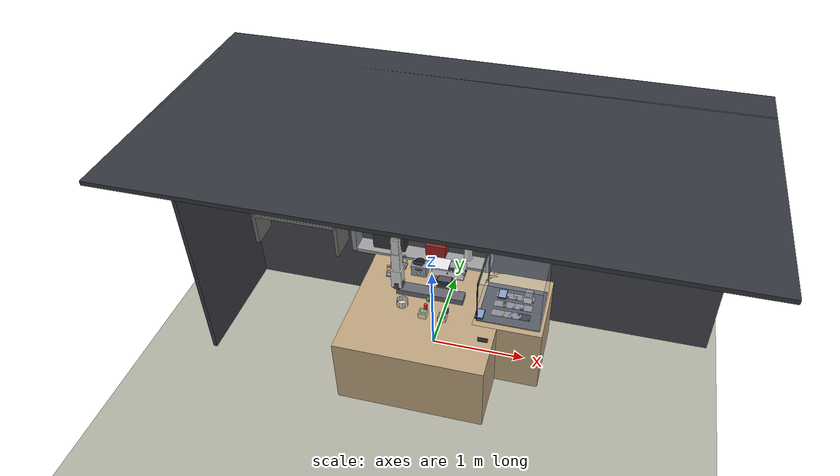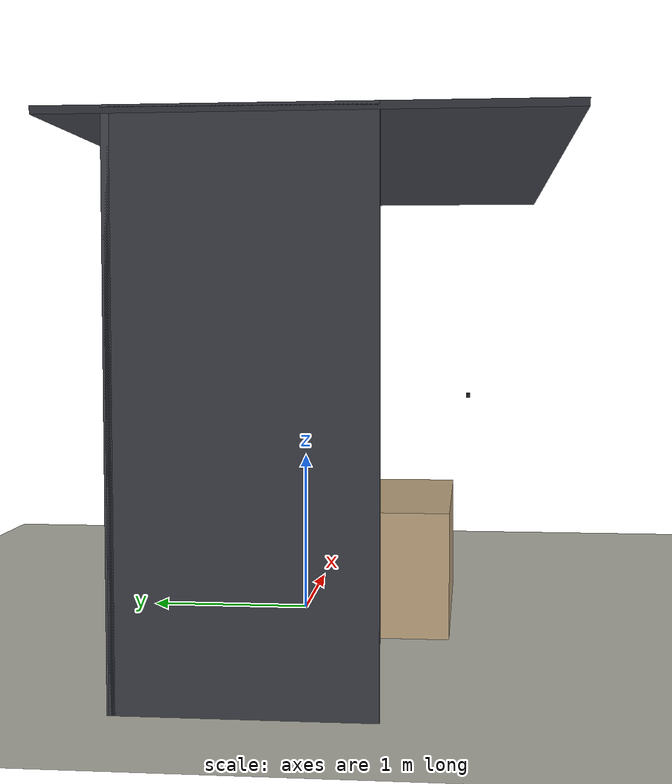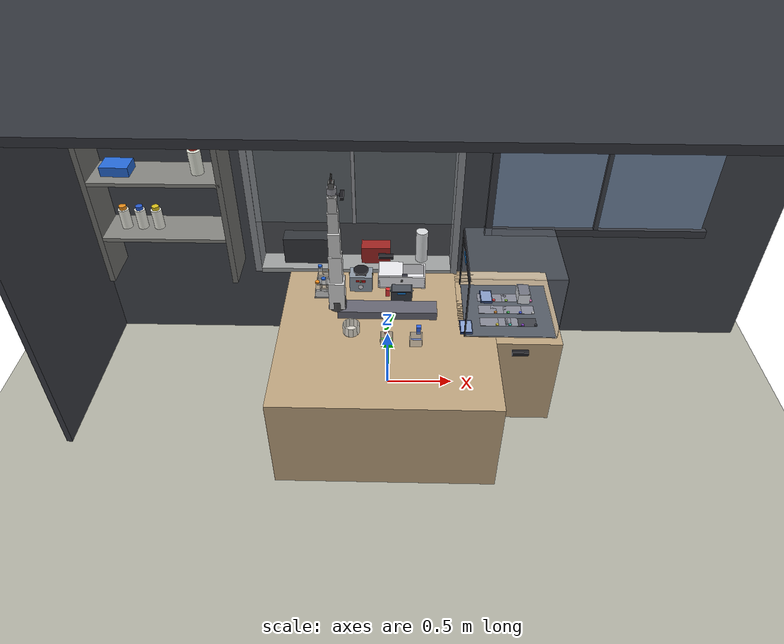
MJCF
<mujoco model="xarm6_rail_cubes_bins">

  <compiler angle="radian" meshdir="assets/"/>
  <option gravity="0 0 -9.81" timestep="0.002" integrator="implicitfast"/>

  <!-- Center the viewer on the working area (bench top, slightly forward of
       the rail) and pull the camera back enough to frame the whole arm. -->
  <statistic center="0 0.15 0.95" extent="1.8"/>

  <visual>
    <headlight ambient="0.4 0.4 0.4" diffuse="0.6 0.6 0.6"/>
    <rgba haze="0.15 0.25 0.35 1"/>
    <map zfar="30"/>
    <!-- azimuth=135 looks at the scene from the front-right; elevation=-25
         tilts the view ~25 deg down so the bench/cubes/bins are clearly visible. -->
    <global azimuth="135" elevation="-25" offwidth="1280" offheight="720"/>
  </visual>

  <default>
    <default class="arm_link">
      <geom contype="2" conaffinity="1"/>
    </default>
    <default class="cube">
      <geom type="box" size="0.015 0.015 0.015" mass="0.05"
            friction="1.0 0.05 0.0001" solref="0.005 1" solimp="0.95 0.99 0.001"/>
    </default>
    <default class="cup_wall">
      <geom type="box" mass="0" contype="1" conaffinity="1"/>
    </default>
    <default class="bin_wall">
      <geom type="box" rgba="0.8 0.8 0.8 0.5" mass="0"
            contype="1" conaffinity="1"/>
    </default>
    <default class="tube_body">
      <geom type="cylinder" size="0.015 0.0575" mass="0.05"
            friction="1.0 0.05 0.0001" solref="0.005 1" solimp="0.95 0.99 0.001"/>
    </default>
    <default class="rack_wall">
      <geom type="box" rgba="0.85 0.85 0.85 0.7" mass="0"
            contype="1" conaffinity="1"/>
    </default>
    <default class="rack_base">
      <geom type="box" rgba="0.6 0.6 0.6 1" mass="0"
            contype="1" conaffinity="1"/>
    </default>
    <default class="well_plate_body">
      <geom type="box" size="0.0425 0.0635 0.007" mass="0.10"
            friction="1.0 0.05 0.0001"
            solref="0.005 1" solimp="0.95 0.99 0.001"/>
    </default>
    <default class="ot2_wall">
      <geom type="box" rgba="0.85 0.92 1.0 0.18" mass="0"
            contype="1" conaffinity="1"/>
    </default>
    <!-- Opentrons-style tip rack (96-position SBS tip box). Slightly
         taller than a plate (tips contribute the bulk of the height). -->
    <default class="tip_box_body">
      <geom type="box" size="0.0425 0.0635 0.040" mass="0.20"
            friction="1.0 0.05 0.0001"
            solref="0.005 1" solimp="0.95 0.99 0.001"/>
    </default>
    <default class="heater_shaker_body">
      <geom type="box" size="0.076 0.045 0.041" mass="2.0"
            friction="2.0 0.1 0.01"
            solref="0.005 1" solimp="0.95 0.99 0.001"/>
    </default>
    <default class="vortex_platform_geom">
      <geom type="cylinder" size="0.055 0.005" mass="0"
            friction="3.0 1.0 0.005"
            solref="0.005 1" solimp="0.95 0.99 0.001"/>
    </default>
  </default>

  <asset>
    <material name="red_mat"   rgba="0.9 0.2 0.2 1"/>
    <material name="green_mat" rgba="0.2 0.8 0.3 1"/>
    <material name="blue_mat"  rgba="0.2 0.4 0.9 1"/>
    <material name="translucent_cup_mat" rgba="0.93 0.93 0.91 0.85"/>
    <material name="red_bin_mat"   rgba="0.9 0.2 0.2 0.6"/>
    <material name="green_bin_mat" rgba="0.2 0.8 0.3 0.6"/>
    <material name="blue_bin_mat"  rgba="0.2 0.4 0.9 0.6"/>
    <!-- Falcon tube materials -->
    <material name="tube_body_mat"  rgba="0.95 0.95 0.95 0.5"/>
    <material name="cap_orange_mat" rgba="0.95 0.55 0.10 1"/>
    <material name="cap_blue_mat"   rgba="0.15 0.40 0.85 1"/>
    <!-- OT-2 instrument materials -->
    <material name="ot2_chassis_mat" rgba="0.95 0.95 0.95 1"/>
    <material name="ot2_deck_mat"    rgba="0.30 0.32 0.36 1"/>
    <material name="ot2_slot_mat"    rgba="0.55 0.55 0.60 1"/>
    <material name="ot2_frame_mat"   rgba="0.20 0.20 0.22 1"/>
    <material name="ot2_logo_mat"    rgba="0.10 0.50 0.85 1"/>
    <!-- 96-well plate material (dark blue, typical biology plate) -->
    <material name="well_plate_mat"  rgba="0.10 0.20 0.45 1"/>
    <material name="well_plate_top_mat" rgba="0.55 0.65 0.85 1"/>
    <!-- Tip box (Opentrons tip rack is typically white/grey) -->
    <material name="tip_box_mat"     rgba="0.92 0.92 0.94 1"/>
    <material name="tip_box_top_mat" rgba="0.45 0.45 0.50 1"/>
    <!-- Heater-shaker (Opentrons module is mostly dark grey with a blue accent) -->
    <material name="heater_shaker_mat"     rgba="0.20 0.22 0.26 1"/>
    <material name="heater_shaker_top_mat" rgba="0.30 0.32 0.36 1"/>
    <material name="heater_shaker_accent_mat" rgba="0.10 0.50 0.85 1"/>
    <!-- Vortex-Genie 2: classic look is grey chassis, black neck,
         dark rubber/foam top platform. -->
    <material name="vortex_chassis_mat"  rgba="0.55 0.60 0.65 1"/>
    <material name="vortex_neck_mat"     rgba="0.15 0.15 0.17 1"/>
    <material name="vortex_platform_mat" rgba="0.10 0.10 0.12 1"/>
    <material name="vortex_dial_mat"     rgba="0.85 0.85 0.88 1"/>
    <material name="vortex_logo_mat"     rgba="0.80 0.10 0.10 1"/>
    <material name="slot_1_mat"  rgba="0.95 0.20 0.20 1"/>   <!-- red -->
    <material name="slot_2_mat"  rgba="0.95 0.55 0.10 1"/>   <!-- orange -->
    <material name="slot_3_mat"  rgba="0.95 0.85 0.20 1"/>   <!-- yellow -->
    <material name="slot_4_mat"  rgba="0.60 0.85 0.20 1"/>   <!-- yellow-green -->
    <material name="slot_5_mat"  rgba="0.20 0.80 0.30 1"/>   <!-- green -->
    <material name="slot_6_mat"  rgba="0.20 0.80 0.70 1"/>   <!-- teal -->
    <material name="slot_7_mat"  rgba="0.20 0.65 0.95 1"/>   <!-- cyan -->
    <material name="slot_8_mat"  rgba="0.20 0.30 0.95 1"/>   <!-- blue -->
    <material name="slot_9_mat"  rgba="0.55 0.20 0.85 1"/>   <!-- purple -->
    <material name="slot_10_mat" rgba="0.95 0.45 0.75 1"/>   <!-- pink -->
    <material name="slot_11_mat" rgba="0.95 0.95 0.95 1"/>   <!-- white -->
    <material name="slot_trash_mat" rgba="0.15 0.15 0.18 1"/> <!-- dark grey -->
    <material name="led_pcb_mat" rgba="0.12 0.12 0.13 1"/>
    <material name="led_off_mat" rgba="0.05 0.05 0.05 1"/>
    <!-- Opentrons Thermocycler Module materials. Off-white chassis with
         dark anodised heated-block + tiny blue display. -->
    <material name="pcr_chassis_mat" rgba="0.92 0.92 0.94 1"/>
    <material name="pcr_lid_mat"     rgba="0.92 0.92 0.94 1"/>
    <material name="pcr_block_mat"   rgba="0.18 0.18 0.22 1"/>
    <material name="pcr_display_mat" rgba="0.10 0.30 0.55 1"/>
    <material name="pcr_logo_mat"    rgba="0.10 0.50 0.85 1"/>
    <material name="bio_gripper_body_mat"   rgba="0.20 0.20 0.22 0"/>
    <material name="bio_gripper_pad_mat"    rgba="0.30 0.30 0.32 0"/>
    <material name="bio_gripper_rubber_mat" rgba="0.95 0.55 0.30 0"/>
  </asset>

  <worldbody>

    <light pos="0 0 2.5" dir="0 0 -1" diffuse="0.7 0.7 0.7"/>
    <light pos="0.5 0.5 1.8" dir="-0.3 -0.3 -1" diffuse="0.4 0.4 0.4"/>

    <body name="vr_head" mocap="true" pos="0 -0.6 1.4">
      <camera name="cam_left"  pos="-0.0315 0 0" quat="0.7071 0.7071 0 0" fovy="90"/>
      <camera name="cam_right" pos=" 0.0315 0 0" quat="0.7071 0.7071 0 0" fovy="90"/>
    </body>

    <geom name="floor" type="plane" size="3 3 0.1"
          rgba="0.7 0.7 0.65 1" contype="1" conaffinity="1"/>

    <body name="lab_environment" pos="0 0 0">

      <!-- Back wall and ceiling. -->
      <geom group="2" name="wall_back" type="box" size="2.60 0.02 1.45"
            pos="0.30 0.640 1.45" rgba="0.26 0.27 0.30 1"
            contype="0" conaffinity="0" mass="0"/>
      <geom group="2" name="wall_north" type="box" size="0.02 0.65 1.45"
            pos="-2.28 0.00 1.45" rgba="0.23 0.24 0.27 1"
            contype="0" conaffinity="0" mass="0"/>
      <geom group="2" name="ceiling" type="box" size="2.60 1.30 0.02"
            pos="0.30 -0.30 2.88" rgba="0.20 0.21 0.24 1"
            contype="0" conaffinity="0" mass="0"/>

      <!-- ---------------- Fume hood, directly behind the arm ----------------
           Working aperture roughly x in [-0.95, +0.45], sash closed to about
           mid-height, upper cabinet above it. -->
      <geom group="2" name="hood_interior" type="box" size="0.72 0.01 0.80"
            pos="-0.25 0.620 1.55" rgba="0.30 0.31 0.33 1"
            contype="0" conaffinity="0" mass="0"/>
      <geom group="2" name="hood_deck" type="box" size="0.72 0.10 0.02"
            pos="-0.25 0.520 0.760" rgba="0.62 0.63 0.63 1"
            contype="0" conaffinity="0" mass="0"/>
      <geom group="2" name="hood_post_north" type="box" size="0.025 0.10 0.83"
            pos="-0.995 0.520 1.58" rgba="0.55 0.56 0.58 1"
            contype="0" conaffinity="0" mass="0"/>
      <geom group="2" name="hood_post_south" type="box" size="0.025 0.10 0.83"
            pos="0.495 0.520 1.58" rgba="0.55 0.56 0.58 1"
            contype="0" conaffinity="0" mass="0"/>
      <geom group="2" name="hood_lintel" type="box" size="0.77 0.10 0.06"
            pos="-0.25 0.520 2.47" rgba="0.24 0.25 0.28 1"
            contype="0" conaffinity="0" mass="0"/>
      <!-- Sash glass. Alpha low enough to read the clutter behind it. -->
      <geom group="2" name="hood_sash" type="box" size="0.72 0.006 0.42"
            pos="-0.25 0.430 1.62" rgba="0.70 0.78 0.80 0.22"
            contype="0" conaffinity="0" mass="0"/>
      <geom group="2" name="hood_sash_rail" type="box" size="0.72 0.012 0.014"
            pos="-0.25 0.425 2.05" rgba="0.60 0.61 0.63 1"
            contype="0" conaffinity="0" mass="0"/>
      <geom group="2" name="hood_mullion" type="box" size="0.012 0.010 0.42"
            pos="-0.25 0.428 1.62" rgba="0.58 0.59 0.61 1"
            contype="0" conaffinity="0" mass="0"/>
      <!-- Foil-wrapped trays on the hood's upper shelf, as in the photo. -->
      <geom group="2" name="hood_upper_shelf" type="box" size="0.72 0.09 0.012"
            pos="-0.25 0.520 2.14" rgba="0.50 0.51 0.53 1"
            contype="0" conaffinity="0" mass="0"/>
      <geom group="2" name="hood_foil_a" type="box" size="0.26 0.07 0.055"
            pos="-0.52 0.520 2.20" rgba="0.80 0.81 0.83 1"
            contype="0" conaffinity="0" mass="0"/>
      <geom group="2" name="hood_foil_b" type="box" size="0.20 0.07 0.045"
            pos="0.05 0.520 2.19" rgba="0.76 0.77 0.79 1"
            contype="0" conaffinity="0" mass="0"/>
      <!-- Instruments visible inside the hood, kept blocky on purpose. -->
      <geom group="2" name="hood_kit_dark" type="box" size="0.18 0.07 0.11"
            pos="-0.62 0.560 0.890" rgba="0.20 0.21 0.23 1"
            contype="0" conaffinity="0" mass="0"/>
      <geom group="2" name="hood_kit_red" type="box" size="0.11 0.06 0.07"
            pos="-0.10 0.560 0.850" rgba="0.62 0.14 0.13 1"
            contype="0" conaffinity="0" mass="0"/>
      <geom group="2" name="hood_scope" type="cylinder" size="0.045 0.13"
            pos="0.25 0.560 0.910" rgba="0.85 0.86 0.87 1"
            contype="0" conaffinity="0" mass="0"/>

      <!-- ---------------- Reagent shelving, north end ---------------- -->
      <geom group="2" name="shelf_upright_a" type="box" size="0.02 0.16 0.90"
            pos="-1.16 0.470 1.62" rgba="0.44 0.44 0.43 1"
            contype="0" conaffinity="0" mass="0"/>
      <geom group="2" name="shelf_upright_b" type="box" size="0.02 0.16 0.90"
            pos="-2.10 0.470 1.62" rgba="0.44 0.44 0.43 1"
            contype="0" conaffinity="0" mass="0"/>
      <geom group="2" name="shelf_board_1" type="box" size="0.47 0.16 0.014"
            pos="-1.63 0.470 1.10" rgba="0.52 0.52 0.50 1"
            contype="0" conaffinity="0" mass="0"/>
      <geom group="2" name="shelf_board_2" type="box" size="0.47 0.16 0.014"
            pos="-1.63 0.470 1.56" rgba="0.52 0.52 0.50 1"
            contype="0" conaffinity="0" mass="0"/>
      <geom group="2" name="shelf_board_3" type="box" size="0.47 0.16 0.014"
            pos="-1.63 0.470 2.02" rgba="0.52 0.52 0.50 1"
            contype="0" conaffinity="0" mass="0"/>
      <!-- Reagent bottles: body + coloured cap, the lab's usual palette. -->
      <geom group="2" name="bottle_a" type="cylinder" size="0.038 0.075"
            pos="-1.94 0.470 1.19" rgba="0.92 0.92 0.88 1"
            contype="0" conaffinity="0" mass="0"/>
      <geom group="2" name="bottle_a_cap" type="cylinder" size="0.026 0.014"
            pos="-1.94 0.470 1.28" rgba="0.90 0.55 0.10 1"
            contype="0" conaffinity="0" mass="0"/>
      <geom group="2" name="bottle_b" type="cylinder" size="0.038 0.075"
            pos="-1.82 0.470 1.19" rgba="0.92 0.92 0.88 1"
            contype="0" conaffinity="0" mass="0"/>
      <geom group="2" name="bottle_b_cap" type="cylinder" size="0.026 0.014"
            pos="-1.82 0.470 1.28" rgba="0.15 0.35 0.80 1"
            contype="0" conaffinity="0" mass="0"/>
      <geom group="2" name="bottle_c" type="cylinder" size="0.038 0.075"
            pos="-1.70 0.470 1.19" rgba="0.92 0.92 0.88 1"
            contype="0" conaffinity="0" mass="0"/>
      <geom group="2" name="bottle_c_cap" type="cylinder" size="0.026 0.014"
            pos="-1.70 0.470 1.28" rgba="0.85 0.75 0.10 1"
            contype="0" conaffinity="0" mass="0"/>
      <geom group="2" name="bottle_d" type="cylinder" size="0.045 0.090"
            pos="-1.34 0.470 1.66" rgba="0.90 0.91 0.86 1"
            contype="0" conaffinity="0" mass="0"/>
      <geom group="2" name="bottle_d_cap" type="cylinder" size="0.030 0.014"
            pos="-1.34 0.470 1.77" rgba="0.80 0.20 0.15 1"
            contype="0" conaffinity="0" mass="0"/>
      <!-- Blue tube racks, the most recognisable thing on those shelves. -->
      <geom group="2" name="wall_rack_1" type="box" size="0.10 0.075 0.035"
            pos="-1.90 0.470 1.61" rgba="0.15 0.42 0.85 1"
            contype="0" conaffinity="0" mass="0"/>
      <geom group="2" name="wall_rack_2" type="box" size="0.10 0.075 0.035"
            pos="-1.66 0.470 2.07" rgba="0.15 0.42 0.85 1"
            contype="0" conaffinity="0" mass="0"/>
      <geom group="2" name="shelf_box" type="box" size="0.13 0.10 0.075"
            pos="-1.32 0.470 2.11" rgba="0.72 0.60 0.42 1"
            contype="0" conaffinity="0" mass="0"/>

      <geom group="2" name="window_glass" type="box" size="0.80 0.008 0.62"
            pos="1.55 0.615 1.68" rgba="0.46 0.55 0.66 1"
            contype="0" conaffinity="0" mass="0"/>
      <geom group="2" name="window_frame_top" type="box" size="0.83 0.025 0.030"
            pos="1.55 0.600 2.33" rgba="0.22 0.23 0.26 1"
            contype="0" conaffinity="0" mass="0"/>
      <geom group="2" name="window_frame_bottom" type="box" size="0.83 0.025 0.030"
            pos="1.55 0.600 1.03" rgba="0.22 0.23 0.26 1"
            contype="0" conaffinity="0" mass="0"/>
      <geom group="2" name="window_frame_north" type="box" size="0.025 0.025 0.68"
            pos="0.75 0.600 1.68" rgba="0.22 0.23 0.26 1"
            contype="0" conaffinity="0" mass="0"/>
      <geom group="2" name="window_mullion" type="box" size="0.016 0.020 0.62"
            pos="1.55 0.598 1.68" rgba="0.24 0.25 0.28 1"
            contype="0" conaffinity="0" mass="0"/>
    </body>

    <body name="bench" pos="0 0 0.375">
      <!-- Main section: x in [-0.75, 0.75] (1.50 m), y in [-0.947, 0.45]
           (1.397 m = 139.7 cm). -->
      <geom name="bench_top" type="box" size="0.75 0.6985 0.375"
            pos="0 -0.2485 0"
            rgba="0.75 0.65 0.5 1" contype="1" conaffinity="1" mass="0"/>
      <!-- OT-2 extension (the L arm): x in [0.50, 1.20], y in [-0.35, 0.45]. -->
      <geom name="bench_ot2_ext" type="box" size="0.35 0.40 0.375"
            pos="0.85 0.05 0"
            rgba="0.75 0.65 0.5 1" contype="1" conaffinity="1" mass="0"/>
    </body>

    <body name="observers" pos="0 0 0">
      <!-- cam_overhead: primary: object positions, and did-it-land verification
           15 deg off vertical -> 26% of depth error lands in X-Y -->
      <geom name="cam_overhead_housing" type="box"
            size="0.0450 0.0125 0.0125"
            pos="0.0000 -0.4500 1.5500"
            rgba="0.12 0.12 0.14 1" mass="0"
            contype="0" conaffinity="0"/>
      <camera name="cam_overhead"
              pos="0.000000 -0.450000 1.550000"
              xyaxes="1.000000 0.000000 -0.000000 0.000000 0.966235 0.257663"
              resolution="1280 720"
              sensorsize="0.003840000 0.002160000"
              focalpixel="915.244873 916.319824"
              principalpixel="20.033508 -2.447205"/>
      <!-- cam_tripod: complement: object height, into-the-cup views, occlusion backup
           63 deg off vertical -> 89% of depth error lands in X-Y -->
      <geom name="cam_tripod_housing" type="box"
            size="0.0450 0.0125 0.0125"
            pos="0.7500 -1.0500 1.3500"
            rgba="0.12 0.12 0.14 1" mass="0"
            contype="0" conaffinity="0"/>
      <camera name="cam_tripod"
              pos="0.750000 -1.050000 1.350000"
              xyaxes="0.729537 0.683941 -0.000000 -0.306629 0.327071 0.893870"
              resolution="1280 720"
              sensorsize="0.003840000 0.002160000"
              focalpixel="915.244873 916.319824"
              principalpixel="20.033508 -2.447205"/>
    </body>

    <body name="rail_track" pos="0.0 -0.05 0.807">
      <geom name="rail_geom" type="box" size="0.35 0.065 0.031" pos="0 0 -0.026"
            rgba="0.4 0.4 0.45 1" contype="0" conaffinity="0" mass="0"/>

      <body name="rail_carriage" pos="-0.35 0.0 0.02">
        <joint name="rail" type="slide" axis="1 0 0"
               range="0.0 0.7" damping="200"/>
        <geom name="carriage_geom" type="box" size="0.06 0.04 0.015"
              rgba="0.55 0.55 0.6 1" contype="1" conaffinity="1" mass="2.0"/>

        <body name="xarm_base" pos="0 0 0.02">
          <geom name="base_link" type="cylinder" size="0.06 0.04"
                rgba="0.3 0.3 0.3 1" mass="0.5" class="arm_link"/>
          <joint name="joint1" type="hinge" axis="0 0 1"
                 range="-6.28319 6.28319" damping="10"/>

          <body name="link1" pos="0 0 0.09">
            <geom name="link1_geom" type="box" size="0.055 0.055 0.11"
                  rgba="0.85 0.85 0.85 1" mass="2.16" class="arm_link"/>
            <joint name="joint2" type="hinge" axis="0 1 0"
                   range="-2.05896 2.0944" damping="10"/>

            <body name="link2" pos="0 0 0.22">
              <geom name="link2_geom" type="box" size="0.045 0.045 0.105"
                    rgba="0.85 0.85 0.85 1" mass="1.71" class="arm_link"/>
              <joint name="joint3" type="hinge" axis="0 1 0"
                     range="-3.92699 0.19199" damping="8"/>

              <body name="link3" pos="0 0 0.20">
                <geom name="link3_geom" type="box" size="0.04 0.04 0.09"
                      rgba="0.8 0.8 0.8 1" mass="1.38" class="arm_link"/>
                <joint name="joint4" type="hinge" axis="1 0 0"
                       range="-6.28319 6.28319" damping="6"/>

                <body name="link4" pos="0 0 0.175">
                  <geom name="link4_geom" type="box" size="0.035 0.035 0.075"
                        rgba="0.75 0.75 0.75 1" mass="1.05" class="arm_link"/>
                  <joint name="joint5" type="hinge" axis="0 1 0"
                         range="-1.69297 3.14159" damping="4"/>

                  <body name="link5" pos="0 0 0.13">
                    <geom name="link5_geom" type="box" size="0.03 0.03 0.055"
                          rgba="0.7 0.7 0.7 1" mass="0.72" class="arm_link"/>
                    <joint name="joint6" type="hinge" axis="1 0 0"
                           range="-6.28319 6.28319" damping="3"/>

                    <body name="link6" pos="0 0 0.075">
                      <geom name="link6_geom" type="cylinder" size="0.025 0.03"
                            rgba="0.6 0.6 0.6 1" mass="0.25" class="arm_link"/>
                      <!-- IK target marker. Kept small + translucent so it's an
                           unobtrusive cue rather than dominating the visual. -->
                      <site name="end_effector" pos="0 0 0.09"
                            size="0.005" rgba="1 0.3 0.3 0.5" type="sphere"/>
                      <body name="gripper" pos="0 0 0.06">
                        <geom name="tool_coupling" type="cylinder"
                              size="0.031 0.0225" pos="0 0 -0.0375"
                              rgba="0.55 0.55 0.58 1" mass="0"
                              contype="0" conaffinity="0"/>
                        <!-- Palm: the static wrist plate. Geom name preserved
                             for FK validator (ARM_GEOM_NAMES) + weld targets. -->
                        <geom name="gripper_geom" type="box"
                              size="0.018 0.025 0.020"
                              pos="0 0 0.005"
                              rgba="0.35 0.35 0.35 1" mass="0.15"
                              class="arm_link"/>
                        <body name="finger_left" pos="0 -0.025 0.045">
                          <joint name="finger_left_joint" type="slide"
                                 axis="0 1 0" range="0 0.015" damping="2"/>
                          <geom name="finger_left_geom" type="box"
                                size="0.005 0.004 0.020"
                                rgba="0.2 0.2 0.2 1" mass="0.02"
                                contype="0" conaffinity="0"/>
                        </body>
                        <body name="finger_right" pos="0 0.025 0.045">
                          <joint name="finger_right_joint" type="slide"
                                 axis="0 -1 0" range="0 0.015" damping="2"/>
                          <geom name="finger_right_geom" type="box"
                                size="0.005 0.004 0.020"
                                rgba="0.2 0.2 0.2 1" mass="0.02"
                                contype="0" conaffinity="0"/>
                        </body>
                        <geom name="bio_gripper_body" type="box"
                              size="0.045 0.030 0.010"
                              pos="0 0 0.010"
                              material="bio_gripper_body_mat" mass="0"
                              contype="0" conaffinity="0"/>
                        <geom name="bio_gripper_pad_left" type="box"
                              size="0.005 0.030 0.020"
                              pos="-0.040 0 0.045"
                              material="bio_gripper_pad_mat" mass="0"
                              contype="0" conaffinity="0"/>
                        <geom name="bio_gripper_pad_right" type="box"
                              size="0.005 0.030 0.020"
                              pos="+0.040 0 0.045"
                              material="bio_gripper_pad_mat" mass="0"
                              contype="0" conaffinity="0"/>
                        <geom name="bio_gripper_rubber_left" type="box"
                              size="0.001 0.028 0.018"
                              pos="-0.034 0 0.045"
                              material="bio_gripper_rubber_mat" mass="0"
                              contype="0" conaffinity="0"/>
                        <geom name="bio_gripper_rubber_right" type="box"
                              size="0.001 0.028 0.018"
                              pos="+0.034 0 0.045"
                              material="bio_gripper_rubber_mat" mass="0"
                              contype="0" conaffinity="0"/>
                        <body name="wrist_camera"
                              pos="0.067052239 -0.031138757 -0.038388544"
                              quat="-0.001556928 0.700327003 0.713806469 0.004470910">
                          <geom name="d435i_housing" type="box"
                                size="0.0450 0.0125 0.0125"
                                pos="0 0 0.0135"
                                rgba="0.10 0.10 0.12 1" mass="0.072"
                                contype="0" conaffinity="0"/>
                          <geom name="d435i_bracket" type="box"
                                size="0.03696 0.006 0.004"
                                pos="0.016206 -0.033223 0.017498"
                                quat="0.848058 0.000015 0.000024 -0.529903"
                                rgba="0.30 0.30 0.33 1" mass="0"
                                contype="0" conaffinity="0"/>
                          <camera name="cam_wrist_color"
                                  pos="0.000000000 0.000000000 0.000000000"
                                  quat="1.000000000 0.000000000 0.000000000 0.000000000"
                                  resolution="640 480"
                                  sensorsize="0.001920000 0.001440000"
                                  focalpixel="610.163269 610.879883"
                                  principalpixel="13.189026 -1.798126"/>
                          <camera name="cam_wrist_depth"
                                  pos="-0.014915820 0.000356515 0.000118665"
                                  quat="0.999959400 0.000508270 0.003389387 0.008333837"
                                  resolution="640 480"
                                  sensorsize="0.001920000 0.001440000"
                                  focalpixel="383.829987 383.829987"
                                  principalpixel="-1.451294 0.914062"/>
                        </body>
                      </body>
                    </body>
                  </body>
                </body>
              </body>
            </body>
          </body>
        </body>

      </body>
    </body>

    <!-- Cubes -->
    <body name="red_cube_back" pos="0.00 0.15 0.78">
      <geom name="red_cube_back_geom" class="cube" material="red_mat"
            size="0.015 0.015 0.030" mass="0.10"/>
      <joint type="free" name="red_cube_back_joint"/>
    </body>
    <body name="red_cube_front" pos="0.00 -0.25 0.78">
      <geom name="red_cube_front_geom" class="cube" material="red_mat"
            size="0.015 0.015 0.030" mass="0.10"/>
      <joint type="free" name="red_cube_front_joint"/>
    </body>
    <body name="green_cube" pos="0.00 -0.15 0.78">
      <geom name="green_cube_geom" class="cube" material="green_mat"/>
      <joint type="free" name="green_cube_joint"/>
    </body>
    <body name="blue_cube" pos="0.22 -0.25 0.78">
      <geom name="blue_cube_geom" class="cube" material="blue_mat"
            size="0.015 0.015 0.030" mass="0.10"/>
      <joint type="free" name="blue_cube_joint"/>
    </body>

    <!-- Bins -->

    <body name="green_bin" pos="0.00 -0.35 0.75">
      <inertial pos="0 0 0.020" mass="0.5" diaginertia="6e-4 6e-4 9e-4"/>
      <joint type="free" name="green_bin_joint"/>
      <geom name="green_bin_floor" type="box" size="0.040 0.040 0.001"
            pos="0 0 0.001" material="green_bin_mat"
            contype="1" conaffinity="1" mass="0"/>
      <geom name="green_bin_w_front" class="bin_wall"
            size="0.040 0.002 0.030" pos="0 -0.040 0.030"/>
      <geom name="green_bin_w_back"  class="bin_wall"
            size="0.040 0.002 0.030" pos="0  0.040 0.030"/>
      <geom name="green_bin_w_left"  class="bin_wall"
            size="0.002 0.040 0.030" pos="-0.040 0 0.030"/>
      <geom name="green_bin_w_right" class="bin_wall"
            size="0.002 0.040 0.030" pos=" 0.040 0 0.030"/>
    </body>

    <body name="translucent_cup" pos="-0.245 -0.25 0.75">
      <inertial pos="0 0 0.020" mass="0.15" diaginertia="1.4e-4 1.4e-4 1.0e-4"/>
      <joint type="free" name="translucent_cup_joint"/>
      <geom name="translucent_cup_floor" type="cylinder" size="0.0575 0.001"
            pos="0 0 0.001" material="translucent_cup_mat"
            contype="1" conaffinity="1" mass="0"/>
      <geom name="translucent_cup_w00" class="cup_wall" material="translucent_cup_mat"
            size="0.015 0.002 0.034" pos="0.05550 0.00000 0.036" euler="0 0 1.57080"/>
      <geom name="translucent_cup_w01" class="cup_wall" material="translucent_cup_mat"
            size="0.015 0.002 0.034" pos="0.04806 0.02775 0.036" euler="0 0 2.09440"/>
      <geom name="translucent_cup_w02" class="cup_wall" material="translucent_cup_mat"
            size="0.015 0.002 0.034" pos="0.02775 0.04806 0.036" euler="0 0 2.61799"/>
      <geom name="translucent_cup_w03" class="cup_wall" material="translucent_cup_mat"
            size="0.015 0.002 0.034" pos="0.00000 0.05550 0.036" euler="0 0 3.14159"/>
      <geom name="translucent_cup_w04" class="cup_wall" material="translucent_cup_mat"
            size="0.015 0.002 0.034" pos="-0.02775 0.04806 0.036" euler="0 0 3.66519"/>
      <geom name="translucent_cup_w05" class="cup_wall" material="translucent_cup_mat"
            size="0.015 0.002 0.034" pos="-0.04806 0.02775 0.036" euler="0 0 4.18879"/>
      <geom name="translucent_cup_w06" class="cup_wall" material="translucent_cup_mat"
            size="0.015 0.002 0.034" pos="-0.05550 0.00000 0.036" euler="0 0 4.71239"/>
      <geom name="translucent_cup_w07" class="cup_wall" material="translucent_cup_mat"
            size="0.015 0.002 0.034" pos="-0.04806 -0.02775 0.036" euler="0 0 5.23599"/>
      <geom name="translucent_cup_w08" class="cup_wall" material="translucent_cup_mat"
            size="0.015 0.002 0.034" pos="-0.02775 -0.04806 0.036" euler="0 0 5.75959"/>
      <geom name="translucent_cup_w09" class="cup_wall" material="translucent_cup_mat"
            size="0.015 0.002 0.034" pos="-0.00000 -0.05550 0.036" euler="0 0 6.28319"/>
      <geom name="translucent_cup_w10" class="cup_wall" material="translucent_cup_mat"
            size="0.015 0.002 0.034" pos="0.02775 -0.04806 0.036" euler="0 0 6.80678"/>
      <geom name="translucent_cup_w11" class="cup_wall" material="translucent_cup_mat"
            size="0.015 0.002 0.034" pos="0.04806 -0.02775 0.036" euler="0 0 7.33038"/>
    </body>
    <body name="blue_bin" pos="0.20 -0.35 0.75">
      <inertial pos="0 0 0.020" mass="0.5" diaginertia="6e-4 6e-4 9e-4"/>
      <joint type="free" name="blue_bin_joint"/>
      <geom name="blue_bin_floor" type="box" size="0.040 0.040 0.001"
            pos="0 0 0.001" material="blue_bin_mat"
            contype="1" conaffinity="1" mass="0"/>
      <geom name="blue_bin_w_front" class="bin_wall"
            size="0.040 0.002 0.030" pos="0 -0.040 0.030"/>
      <geom name="blue_bin_w_back"  class="bin_wall"
            size="0.040 0.002 0.030" pos="0  0.040 0.030"/>
      <geom name="blue_bin_w_left"  class="bin_wall"
            size="0.002 0.040 0.030" pos="-0.040 0 0.030"/>
      <geom name="blue_bin_w_right" class="bin_wall"
            size="0.002 0.040 0.030" pos=" 0.040 0 0.030"/>
    </body>

    <!-- LEFT RACK at x=-0.45, y=0.15. Holds L1, L2, L3 scattered across slots.
         Free body so it can be pushed (mass ~250g). -->
    <body name="left_tube_rack" pos="-0.45 0.15 0.755">
      <inertial pos="0 0 0.020" mass="0.25" diaginertia="3e-4 7e-4 8e-4"/>
      <joint type="free" name="left_tube_rack_joint"/>
      <geom name="left_rack_base" class="rack_base" size="0.085 0.045 0.005"
            pos="0 0 0"/>
      <!-- Outer perimeter -->
      <geom name="L_outer_front" class="rack_wall" size="0.080 0.001 0.025" pos=" 0.000 -0.040 0.030"/>
      <geom name="L_outer_back"  class="rack_wall" size="0.080 0.001 0.025" pos=" 0.000  0.040 0.030"/>
      <geom name="L_outer_left"  class="rack_wall" size="0.001 0.040 0.025" pos="-0.080  0.000 0.030"/>
      <geom name="L_outer_right" class="rack_wall" size="0.001 0.040 0.025" pos=" 0.080  0.000 0.030"/>
      <!-- Internal vertical separators (3, between the 4 columns) -->
      <geom name="L_sep_v1" class="rack_wall" size="0.001 0.040 0.025" pos="-0.040 0 0.030"/>
      <geom name="L_sep_v2" class="rack_wall" size="0.001 0.040 0.025" pos=" 0.000 0 0.030"/>
      <geom name="L_sep_v3" class="rack_wall" size="0.001 0.040 0.025" pos=" 0.040 0 0.030"/>
      <!-- Internal horizontal separator (1, between the 2 rows) -->
      <geom name="L_sep_h1" class="rack_wall" size="0.080 0.001 0.025" pos="0 0 0.030"/>
    </body>

    <!-- RIGHT RACK at x=+0.45, y=0.15. Holds R1, R2, R3.
         Free body (same as left). -->
    <body name="right_tube_rack" pos="-0.45 0.30 0.755">
      <inertial pos="0 0 0.020" mass="0.25" diaginertia="3e-4 7e-4 8e-4"/>
      <joint type="free" name="right_tube_rack_joint"/>
      <geom name="right_rack_base" class="rack_base" size="0.085 0.045 0.005"
            pos="0 0 0"/>
      <geom name="R_outer_front" class="rack_wall" size="0.080 0.001 0.025" pos=" 0.000 -0.040 0.030"/>
      <geom name="R_outer_back"  class="rack_wall" size="0.080 0.001 0.025" pos=" 0.000  0.040 0.030"/>
      <geom name="R_outer_left"  class="rack_wall" size="0.001 0.040 0.025" pos="-0.080  0.000 0.030"/>
      <geom name="R_outer_right" class="rack_wall" size="0.001 0.040 0.025" pos=" 0.080  0.000 0.030"/>
      <geom name="R_sep_v1" class="rack_wall" size="0.001 0.040 0.025" pos="-0.040 0 0.030"/>
      <geom name="R_sep_v2" class="rack_wall" size="0.001 0.040 0.025" pos=" 0.000 0 0.030"/>
      <geom name="R_sep_v3" class="rack_wall" size="0.001 0.040 0.025" pos=" 0.040 0 0.030"/>
      <geom name="R_sep_h1" class="rack_wall" size="0.080 0.001 0.025" pos="0 0 0.030"/>
    </body>

    <!-- LEFT RACK TUBES -->
    <body name="tube_L1" pos="-0.510 0.130 0.8175">  <!-- col1 row1, orange -->
      <inertial pos="0 0 0.01" mass="0.03" diaginertia="3e-5 3e-5 5e-6"/>
      <geom name="tube_L1_body" class="tube_body" material="tube_body_mat" mass="0"/>
      <geom name="tube_L1_cap"  type="cylinder" size="0.0155 0.006"
            pos="0 0 0.0635" material="cap_orange_mat" mass="0"/>
      <joint type="free" name="tube_L1_joint"/>
    </body>
    <body name="tube_L2" pos="-0.470 0.170 0.8175">  <!-- col2 row2, blue -->
      <inertial pos="0 0 0.01" mass="0.03" diaginertia="3e-5 3e-5 5e-6"/>
      <geom name="tube_L2_body" class="tube_body" material="tube_body_mat" mass="0"/>
      <geom name="tube_L2_cap"  type="cylinder" size="0.0155 0.006"
            pos="0 0 0.0635" material="cap_blue_mat" mass="0"/>
      <joint type="free" name="tube_L2_joint"/>
    </body>
    <body name="tube_L3" pos="-0.390 0.130 0.8175">  <!-- col4 row1, orange -->
      <inertial pos="0 0 0.01" mass="0.03" diaginertia="3e-5 3e-5 5e-6"/>
      <geom name="tube_L3_body" class="tube_body" material="tube_body_mat" mass="0"/>
      <geom name="tube_L3_cap"  type="cylinder" size="0.0155 0.006"
            pos="0 0 0.0635" material="cap_orange_mat" mass="0"/>
      <joint type="free" name="tube_L3_joint"/>
    </body>
    <!-- RIGHT RACK TUBES -->
    <body name="tube_R1" pos="-0.510 0.320 0.8175">  <!-- col1 row2, blue (moved with right_tube_rack to back-left) -->
      <inertial pos="0 0 0.01" mass="0.03" diaginertia="3e-5 3e-5 5e-6"/>
      <geom name="tube_R1_body" class="tube_body" material="tube_body_mat" mass="0"/>
      <geom name="tube_R1_cap"  type="cylinder" size="0.0155 0.006"
            pos="0 0 0.0635" material="cap_blue_mat" mass="0"/>
      <joint type="free" name="tube_R1_joint"/>
    </body>
    <body name="tube_R2" pos="-0.430 0.280 0.8175">  <!-- col3 row1, orange (moved with right_tube_rack to back-left) -->
      <inertial pos="0 0 0.01" mass="0.03" diaginertia="3e-5 3e-5 5e-6"/>
      <geom name="tube_R2_body" class="tube_body" material="tube_body_mat" mass="0"/>
      <geom name="tube_R2_cap"  type="cylinder" size="0.0155 0.006"
            pos="0 0 0.0635" material="cap_orange_mat" mass="0"/>
      <joint type="free" name="tube_R2_joint"/>
    </body>
    <body name="tube_R3" pos="-0.390 0.320 0.8175">  <!-- col4 row2, blue (moved with right_tube_rack to back-left) -->
      <inertial pos="0 0 0.01" mass="0.03" diaginertia="3e-5 3e-5 5e-6"/>
      <geom name="tube_R3_body" class="tube_body" material="tube_body_mat" mass="0"/>
      <geom name="tube_R3_cap"  type="cylinder" size="0.0155 0.006"
            pos="0 0 0.0635" material="cap_blue_mat" mass="0"/>
      <joint type="free" name="tube_R3_joint"/>
    </body>

    <body name="opentrons_ot2" pos="0.85 0.0 0.0">
      <geom name="ot2_chassis" type="box" size="0.315 0.285 0.375"
            pos="0 0 0.375" material="ot2_chassis_mat"
            contype="1" conaffinity="1" mass="0"/>
      <!-- Deck plate: dark grey, 5mm thick, sits on the chassis top.
           Slightly inset (5mm) from chassis edge for a clean look. -->
      <geom name="ot2_deck" type="box" size="0.310 0.280 0.0025"
            pos="0 0 0.7525" material="ot2_deck_mat"
            contype="1" conaffinity="1" mass="0"/>

      <!-- Slot outlines (grey rectangles indicating SBS footprints). -->
      <geom name="ot2_slot_1_outline"  type="box" size="0.064 0.043 0.0010"
            pos="-0.133 +0.132 0.755" material="ot2_slot_mat"
            contype="0" conaffinity="0" mass="0"/>
      <geom name="ot2_slot_2_outline"  type="box" size="0.064 0.043 0.0010"
            pos="-0.133  0.000 0.755" material="ot2_slot_mat"
            contype="0" conaffinity="0" mass="0"/>
      <geom name="ot2_slot_3_outline"  type="box" size="0.064 0.043 0.0010"
            pos="-0.133 -0.132 0.755" material="ot2_slot_mat"
            contype="0" conaffinity="0" mass="0"/>
      <geom name="ot2_slot_4_outline"  type="box" size="0.064 0.043 0.0010"
            pos="-0.044 +0.132 0.755" material="ot2_slot_mat"
            contype="0" conaffinity="0" mass="0"/>
      <geom name="ot2_slot_5_outline"  type="box" size="0.064 0.043 0.0010"
            pos="-0.044  0.000 0.755" material="ot2_slot_mat"
            contype="0" conaffinity="0" mass="0"/>
      <geom name="ot2_slot_6_outline"  type="box" size="0.064 0.043 0.0010"
            pos="-0.044 -0.132 0.755" material="ot2_slot_mat"
            contype="0" conaffinity="0" mass="0"/>
      <geom name="ot2_slot_7_outline"  type="box" size="0.064 0.043 0.0010"
            pos="+0.044 +0.132 0.755" material="ot2_slot_mat"
            contype="0" conaffinity="0" mass="0"/>
      <geom name="ot2_slot_8_outline"  type="box" size="0.064 0.043 0.0010"
            pos="+0.044  0.000 0.755" material="ot2_slot_mat"
            contype="0" conaffinity="0" mass="0"/>
      <geom name="ot2_slot_9_outline"  type="box" size="0.064 0.043 0.0010"
            pos="+0.044 -0.132 0.755" material="ot2_slot_mat"
            contype="0" conaffinity="0" mass="0"/>
      <geom name="ot2_slot_10_outline" type="box" size="0.064 0.043 0.0010"
            pos="+0.133 +0.132 0.755" material="ot2_slot_mat"
            contype="0" conaffinity="0" mass="0"/>
      <geom name="ot2_slot_11_outline" type="box" size="0.064 0.043 0.0010"
            pos="+0.133  0.000 0.755" material="ot2_slot_mat"
            contype="0" conaffinity="0" mass="0"/>
      <geom name="ot2_slot_trash_outline" type="box" size="0.064 0.043 0.0010"
            pos="+0.133 -0.132 0.755" material="ot2_frame_mat"
            contype="0" conaffinity="0" mass="0"/>
      <geom name="ot2_slot_1_tag"  type="cylinder" size="0.010 0.004"
            pos="-0.078 +0.098 0.760" material="slot_1_mat"
            contype="0" conaffinity="0" mass="0"/>
      <geom name="ot2_slot_2_tag"  type="cylinder" size="0.010 0.004"
            pos="-0.078 -0.034 0.760" material="slot_2_mat"
            contype="0" conaffinity="0" mass="0"/>
      <geom name="ot2_slot_3_tag"  type="cylinder" size="0.010 0.004"
            pos="-0.078 -0.166 0.760" material="slot_3_mat"
            contype="0" conaffinity="0" mass="0"/>
      <geom name="ot2_slot_4_tag"  type="cylinder" size="0.010 0.004"
            pos="+0.011 +0.098 0.760" material="slot_4_mat"
            contype="0" conaffinity="0" mass="0"/>
      <geom name="ot2_slot_5_tag"  type="cylinder" size="0.010 0.004"
            pos="+0.011 -0.034 0.760" material="slot_5_mat"
            contype="0" conaffinity="0" mass="0"/>
      <geom name="ot2_slot_6_tag"  type="cylinder" size="0.010 0.004"
            pos="+0.011 -0.166 0.760" material="slot_6_mat"
            contype="0" conaffinity="0" mass="0"/>
      <geom name="ot2_slot_7_tag"  type="cylinder" size="0.010 0.004"
            pos="+0.099 +0.098 0.760" material="slot_7_mat"
            contype="0" conaffinity="0" mass="0"/>
      <geom name="ot2_slot_8_tag"  type="cylinder" size="0.010 0.004"
            pos="+0.099 -0.034 0.760" material="slot_8_mat"
            contype="0" conaffinity="0" mass="0"/>
      <geom name="ot2_slot_9_tag"  type="cylinder" size="0.010 0.004"
            pos="+0.099 -0.166 0.760" material="slot_9_mat"
            contype="0" conaffinity="0" mass="0"/>
      <geom name="ot2_slot_10_tag" type="cylinder" size="0.010 0.004"
            pos="+0.188 +0.098 0.760" material="slot_10_mat"
            contype="0" conaffinity="0" mass="0"/>
      <geom name="ot2_slot_11_tag" type="cylinder" size="0.010 0.004"
            pos="+0.188 -0.034 0.760" material="slot_11_mat"
            contype="0" conaffinity="0" mass="0"/>
      <geom name="ot2_slot_trash_tag" type="cylinder" size="0.010 0.004"
            pos="+0.188 -0.166 0.760" material="slot_trash_mat"
            contype="0" conaffinity="0" mass="0"/>

      <geom name="ot2_back_wall"  class="ot2_wall"
            size="0.005 0.285 0.250" pos="+0.315 0.000 1.005"/>
      <geom name="ot2_left_wall"  class="ot2_wall"
            size="0.315 0.005 0.250" pos="0.000 +0.285 1.005"/>
      <geom name="ot2_right_wall" class="ot2_wall"
            size="0.315 0.005 0.250" pos="0.000 -0.285 1.005"/>
      <geom name="ot2_top"        class="ot2_wall"
            size="0.315 0.285 0.005" pos="0.000 0.000 1.260"/>

      <!-- Front frame trim (visual only, non-colliding): thin top
           edge + corner posts at the open face so it reads as an
           "open-front box" rather than "missing wall". -->
      <geom name="ot2_front_top" type="box" size="0.005 0.285 0.025"
            pos="-0.315 0.000 1.230" material="ot2_frame_mat"
            contype="0" conaffinity="0" mass="0"/>
      <geom name="ot2_front_post_l" type="box" size="0.005 0.005 0.250"
            pos="-0.315 +0.285 1.005" material="ot2_frame_mat"
            contype="0" conaffinity="0" mass="0"/>
      <geom name="ot2_front_post_r" type="box" size="0.005 0.005 0.250"
            pos="-0.315 -0.285 1.005" material="ot2_frame_mat"
            contype="0" conaffinity="0" mass="0"/>
      <!-- Logo strip (blue band on the front top edge) -->
      <geom name="ot2_logo_strip" type="box" size="0.005 0.060 0.012"
            pos="-0.320 0.000 1.210" material="ot2_logo_mat"
            contype="0" conaffinity="0" mass="0"/>
    </body>

    <!-- 96-well plate A: sits in OT-2 slot 1 (front-left) at session
         start. World (0.867, +0.132, 0.7625) = OT-2 origin + slot 1
         offset + plate half-thickness. -->
    <body name="well_plate_A" pos="0.717 +0.132 0.7625">
      <inertial pos="0 0 0" mass="0.10" diaginertia="2e-4 2e-4 3e-4"/>
      <geom name="well_plate_A_body" class="well_plate_body"
            material="well_plate_mat"/>
      <geom name="well_plate_A_top" type="box" size="0.038 0.058 0.0015"
            pos="0 0 0.0085" material="well_plate_top_mat" mass="0"
            contype="0" conaffinity="0"/>
      <joint type="free" name="well_plate_A_joint"/>
    </body>

    <body name="well_plate_B" pos="+0.550 -0.200 0.7625">
      <inertial pos="0 0 0" mass="0.10" diaginertia="2e-4 2e-4 3e-4"/>
      <geom name="well_plate_B_body" class="well_plate_body"
            material="well_plate_mat"/>
      <geom name="well_plate_B_top" type="box" size="0.038 0.058 0.0015"
            pos="0 0 0.0085" material="well_plate_top_mat" mass="0"
            contype="0" conaffinity="0"/>
      <joint type="free" name="well_plate_B_joint"/>
    </body>

    <body name="tip_box" pos="0.983 +0.132 0.795">
      <inertial pos="0 0 0" mass="0.20" diaginertia="3e-4 3e-4 4e-4"/>
      <geom name="tip_box_body" class="tip_box_body"
            material="tip_box_mat"/>
      <!-- Cosmetic top to read as "tip rack grid". -->
      <geom name="tip_box_top" type="box" size="0.038 0.058 0.0015"
            pos="0 0 0.041" material="tip_box_top_mat" mass="0"
            contype="0" conaffinity="0"/>
      <joint type="free" name="tip_box_joint"/>
    </body>

    <body name="heater_shaker" pos="0.100 0.130 0.791">
      <inertial pos="0 0 0" mass="20.0" diaginertia="3e-2 3e-2 5e-2"/>
      <geom name="heater_shaker_body" class="heater_shaker_body"
            material="heater_shaker_mat"/>
      <!-- Flat shaker platform on top (slightly recessed). -->
      <geom name="heater_shaker_platform" type="box"
            size="0.070 0.043 0.002" pos="0 0 0.043"
            material="heater_shaker_top_mat" mass="0"
            contype="1" conaffinity="1"/>
      <!-- Blue accent strip on the front face (signature Opentrons look). -->
      <geom name="heater_shaker_logo" type="box"
            size="0.030 0.001 0.008" pos="0 -0.046 0.030"
            material="heater_shaker_accent_mat" mass="0"
            contype="0" conaffinity="0"/>
      <geom name="shaker_led_left" type="cylinder"
            size="0.009 0.004" pos="-0.080 0 0.020"
            euler="0 1.5708 0"
            rgba="0.05 0.05 0.05 1"
            contype="0" conaffinity="0" mass="0"/>
      <geom name="shaker_led_right" type="cylinder"
            size="0.009 0.004" pos="+0.080 0 0.020"
            euler="0 1.5708 0"
            rgba="0.05 0.05 0.05 1"
            contype="0" conaffinity="0" mass="0"/>
      <joint type="free" name="heater_shaker_joint"/>
    </body>

    <body name="vortex_genie" pos="-0.20 0.25 0.75">
      <!-- Chassis: 165 W x 122 D x 130 H mm. Centred at z=0.065 so
           the chassis bottom sits on the bench (z=0) and the top is
           at z=0.130. -->
      <geom name="vortex_chassis" type="box"
            size="0.0825 0.061 0.065" pos="0 0 0.065"
            material="vortex_chassis_mat"
            contype="1" conaffinity="1" mass="0"/>
      <!-- Neck: short black collar between chassis and platform. -->
      <geom name="vortex_neck" type="box"
            size="0.040 0.040 0.010" pos="0 0 0.140"
            material="vortex_neck_mat"
            contype="1" conaffinity="1" mass="0"/>
      <!-- Speed dial on the front face. -->
      <geom name="vortex_dial" type="cylinder"
            size="0.018 0.005" pos="0 -0.061 0.045"
            euler="1.5708 0 0"
            material="vortex_dial_mat"
            contype="0" conaffinity="0" mass="0"/>
      <!-- Brand strip on the front face (red "Genie 2" colour). -->
      <geom name="vortex_logo" type="box"
            size="0.035 0.001 0.008" pos="0 -0.062 0.095"
            material="vortex_logo_mat"
            contype="0" conaffinity="0" mass="0"/>

      <geom name="vortex_led_front" type="cylinder"
            size="0.009 0.004" pos="0 -0.0865 0.115"
            euler="1.5708 0 0"
            rgba="0.18 0.15 0.02 1"
            contype="0" conaffinity="0" mass="0"/>
      <geom name="vortex_led_back" type="cylinder"
            size="0.009 0.004" pos="0 +0.0865 0.115"
            euler="1.5708 0 0"
            rgba="0.18 0.15 0.02 1"
            contype="0" conaffinity="0" mass="0"/>
      <geom name="vortex_led_left" type="cylinder"
            size="0.009 0.004" pos="-0.0865 0 0.115"
            euler="0 1.5708 0"
            rgba="0.18 0.15 0.02 1"
            contype="0" conaffinity="0" mass="0"/>
      <geom name="vortex_led_right" type="cylinder"
            size="0.009 0.004" pos="+0.0865 0 0.115"
            euler="0 1.5708 0"
            rgba="0.18 0.15 0.02 1"
            contype="0" conaffinity="0" mass="0"/>

      <body name="vortex_platform" pos="0 0 0.155">
        <inertial pos="0 0 0" mass="0.02"
                  diaginertia="2e-5 2e-5 3e-5"/>
        <joint name="vortex_orbit_x" type="slide" axis="1 0 0"
               range="-0.006 0.006" limited="true"
               damping="0.05" stiffness="0"/>
        <joint name="vortex_orbit_y" type="slide" axis="0 1 0"
               range="-0.006 0.006" limited="true"
               damping="0.05" stiffness="0"/>
        <geom name="vortex_platform_top" class="vortex_platform_geom"
              material="vortex_platform_mat"
              contype="1" conaffinity="1"/>
      </body>
    </body>

    <body name="pcr_module" pos="0.10 0.32 0.75" euler="0 0 1.5708">
      <!-- Chassis: open-top box. Floor + 4 walls. Half-extents
           ~(0.085, 0.175, 0.005-0.045) on each piece. -->
      <geom name="pcr_chassis_floor" type="box"
            size="0.085 0.175 0.005" pos="0 0 0.005"
            material="pcr_chassis_mat"
            contype="1" conaffinity="1" mass="0"/>
      <geom name="pcr_chassis_back" type="box"
            size="0.085 0.005 0.045" pos="0 +0.170 0.055"
            material="pcr_chassis_mat"
            contype="1" conaffinity="1" mass="0"/>
      <geom name="pcr_chassis_front" type="box"
            size="0.085 0.005 0.045" pos="0 -0.170 0.055"
            material="pcr_chassis_mat"
            contype="1" conaffinity="1" mass="0"/>
      <geom name="pcr_chassis_left" type="box"
            size="0.005 0.175 0.045" pos="-0.080 0 0.055"
            material="pcr_chassis_mat"
            contype="1" conaffinity="1" mass="0"/>
      <geom name="pcr_chassis_right" type="box"
            size="0.005 0.175 0.045" pos="+0.080 0 0.055"
            material="pcr_chassis_mat"
            contype="1" conaffinity="1" mass="0"/>
      <!-- Heated block: where the 96-well plate sits. Slightly
           smaller than SBS footprint so the plate can drop into
           the recess without snagging. -->
      <geom name="pcr_block" type="box"
            size="0.060 0.043 0.005" pos="0 0 0.015"
            material="pcr_block_mat"
            contype="1" conaffinity="1" mass="0"/>
      <!-- Display panel on the front face (visual only). -->
      <geom name="pcr_display" type="box"
            size="0.045 0.001 0.015" pos="0 -0.176 0.030"
            material="pcr_display_mat"
            contype="0" conaffinity="0" mass="0"/>
      <!-- Opentrons logo strip on the front face (visual only). -->
      <geom name="pcr_logo" type="box"
            size="0.020 0.001 0.005" pos="0 -0.176 0.080"
            material="pcr_logo_mat"
            contype="0" conaffinity="0" mass="0"/>
      <!-- LED indicators: one on each side face (left/right). Default
           rgba = dim grey (off). SimXArmAPI._pcr_tick writes
           red/green based on state. -->
      <geom name="pcr_led_left" type="cylinder"
            size="0.009 0.004" pos="-0.089 0 0.070"
            euler="0 1.5708 0"
            rgba="0.15 0.15 0.15 1"
            contype="0" conaffinity="0" mass="0"/>
      <geom name="pcr_led_right" type="cylinder"
            size="0.009 0.004" pos="+0.089 0 0.070"
            euler="0 1.5708 0"
            rgba="0.15 0.15 0.15 1"
            contype="0" conaffinity="0" mass="0"/>

      <!-- Lid: child body hinged at the back-top edge of the chassis.
           Hinge axis = world x; range [0, pi/2]. Lid extends FORWARD
           (in -y direction) from the hinge when closed. -->
      <body name="pcr_lid" pos="0 0.170 0.110">
        <inertial pos="0 -0.087 0" mass="0.3"
                  diaginertia="3e-3 3e-3 5e-3"/>
        <joint name="pcr_lid_hinge" type="hinge" axis="-1 0 0"
               range="0 1.5708" limited="true"
               damping="2.0"/>
        <!-- Lid panel: 170 W x 175 D x 15 H mm. -->
        <geom name="pcr_lid_top" type="box"
              size="0.085 0.0875 0.0075" pos="0 -0.0875 0"
              material="pcr_lid_mat"
              contype="1" conaffinity="1"/>
        <!-- Lid handle / front lip (cosmetic). -->
        <geom name="pcr_lid_handle" type="box"
              size="0.030 0.005 0.012" pos="0 -0.170 -0.012"
              material="pcr_logo_mat"
              contype="0" conaffinity="0" mass="0"/>
      </body>
    </body>

    <body name="led_strip_A" pos="0 -0.085 0.766">
      <geom name="led_strip_A_pcb" type="box"
            size="0.350 0.0150 0.0030" pos="0 0 0"
            material="led_pcb_mat"
            contype="0" conaffinity="0" mass="0"/>
      <geom name="led_A_01" type="box" size="0.024 0.010 0.006" pos="-0.325 0 0.0090" rgba="0.05 0.05 0.05 1" contype="0" conaffinity="0" mass="0"/>
      <geom name="led_A_02" type="box" size="0.024 0.010 0.006" pos="-0.275 0 0.0090" rgba="0.05 0.05 0.05 1" contype="0" conaffinity="0" mass="0"/>
      <geom name="led_A_03" type="box" size="0.024 0.010 0.006" pos="-0.225 0 0.0090" rgba="0.05 0.05 0.05 1" contype="0" conaffinity="0" mass="0"/>
      <geom name="led_A_04" type="box" size="0.024 0.010 0.006" pos="-0.175 0 0.0090" rgba="0.05 0.05 0.05 1" contype="0" conaffinity="0" mass="0"/>
      <geom name="led_A_05" type="box" size="0.024 0.010 0.006" pos="-0.125 0 0.0090" rgba="0.05 0.05 0.05 1" contype="0" conaffinity="0" mass="0"/>
      <geom name="led_A_06" type="box" size="0.024 0.010 0.006" pos="-0.075 0 0.0090" rgba="0.05 0.05 0.05 1" contype="0" conaffinity="0" mass="0"/>
      <geom name="led_A_07" type="box" size="0.024 0.010 0.006" pos="-0.025 0 0.0090" rgba="0.05 0.05 0.05 1" contype="0" conaffinity="0" mass="0"/>
      <geom name="led_A_08" type="box" size="0.024 0.010 0.006" pos=" 0.025 0 0.0090" rgba="0.05 0.05 0.05 1" contype="0" conaffinity="0" mass="0"/>
      <geom name="led_A_09" type="box" size="0.024 0.010 0.006" pos=" 0.075 0 0.0090" rgba="0.05 0.05 0.05 1" contype="0" conaffinity="0" mass="0"/>
      <geom name="led_A_10" type="box" size="0.024 0.010 0.006" pos=" 0.125 0 0.0090" rgba="0.05 0.05 0.05 1" contype="0" conaffinity="0" mass="0"/>
      <geom name="led_A_11" type="box" size="0.024 0.010 0.006" pos=" 0.175 0 0.0090" rgba="0.05 0.05 0.05 1" contype="0" conaffinity="0" mass="0"/>
      <geom name="led_A_12" type="box" size="0.024 0.010 0.006" pos=" 0.225 0 0.0090" rgba="0.05 0.05 0.05 1" contype="0" conaffinity="0" mass="0"/>
      <geom name="led_A_13" type="box" size="0.024 0.010 0.006" pos=" 0.275 0 0.0090" rgba="0.05 0.05 0.05 1" contype="0" conaffinity="0" mass="0"/>
      <geom name="led_A_14" type="box" size="0.024 0.010 0.006" pos=" 0.325 0 0.0090" rgba="0.05 0.05 0.05 1" contype="0" conaffinity="0" mass="0"/>
    </body>

    <body name="led_strip_B" pos="0 -0.015 0.766">
      <geom name="led_strip_B_pcb" type="box"
            size="0.350 0.0150 0.0030" pos="0 0 0"
            material="led_pcb_mat"
            contype="0" conaffinity="0" mass="0"/>
      <geom name="led_B_01" type="box" size="0.024 0.010 0.006" pos="-0.325 0 0.0090" rgba="0.05 0.05 0.05 1" contype="0" conaffinity="0" mass="0"/>
      <geom name="led_B_02" type="box" size="0.024 0.010 0.006" pos="-0.275 0 0.0090" rgba="0.05 0.05 0.05 1" contype="0" conaffinity="0" mass="0"/>
      <geom name="led_B_03" type="box" size="0.024 0.010 0.006" pos="-0.225 0 0.0090" rgba="0.05 0.05 0.05 1" contype="0" conaffinity="0" mass="0"/>
      <geom name="led_B_04" type="box" size="0.024 0.010 0.006" pos="-0.175 0 0.0090" rgba="0.05 0.05 0.05 1" contype="0" conaffinity="0" mass="0"/>
      <geom name="led_B_05" type="box" size="0.024 0.010 0.006" pos="-0.125 0 0.0090" rgba="0.05 0.05 0.05 1" contype="0" conaffinity="0" mass="0"/>
      <geom name="led_B_06" type="box" size="0.024 0.010 0.006" pos="-0.075 0 0.0090" rgba="0.05 0.05 0.05 1" contype="0" conaffinity="0" mass="0"/>
      <geom name="led_B_07" type="box" size="0.024 0.010 0.006" pos="-0.025 0 0.0090" rgba="0.05 0.05 0.05 1" contype="0" conaffinity="0" mass="0"/>
      <geom name="led_B_08" type="box" size="0.024 0.010 0.006" pos=" 0.025 0 0.0090" rgba="0.05 0.05 0.05 1" contype="0" conaffinity="0" mass="0"/>
      <geom name="led_B_09" type="box" size="0.024 0.010 0.006" pos=" 0.075 0 0.0090" rgba="0.05 0.05 0.05 1" contype="0" conaffinity="0" mass="0"/>
      <geom name="led_B_10" type="box" size="0.024 0.010 0.006" pos=" 0.125 0 0.0090" rgba="0.05 0.05 0.05 1" contype="0" conaffinity="0" mass="0"/>
      <geom name="led_B_11" type="box" size="0.024 0.010 0.006" pos=" 0.175 0 0.0090" rgba="0.05 0.05 0.05 1" contype="0" conaffinity="0" mass="0"/>
      <geom name="led_B_12" type="box" size="0.024 0.010 0.006" pos=" 0.225 0 0.0090" rgba="0.05 0.05 0.05 1" contype="0" conaffinity="0" mass="0"/>
      <geom name="led_B_13" type="box" size="0.024 0.010 0.006" pos=" 0.275 0 0.0090" rgba="0.05 0.05 0.05 1" contype="0" conaffinity="0" mass="0"/>
      <geom name="led_B_14" type="box" size="0.024 0.010 0.006" pos=" 0.325 0 0.0090" rgba="0.05 0.05 0.05 1" contype="0" conaffinity="0" mass="0"/>
    </body>

  </worldbody>

  <contact>
    <exclude body1="rail_carriage" body2="xarm_base"/>
    <exclude body1="rail_carriage" body2="link1"/>
    <exclude body1="xarm_base"     body2="link1"/>
    <exclude body1="link1"         body2="link2"/>
    <exclude body1="link2"         body2="link3"/>
    <exclude body1="link3"         body2="link4"/>
    <exclude body1="link4"         body2="link5"/>
    <exclude body1="link5"         body2="link6"/>
    <exclude body1="link6"         body2="gripper"/>
  </contact>

  <equality>
    <weld name="grip_translucent_cup"     body1="gripper" body2="translucent_cup"     active="false"/>
    <weld name="grip_red_cube_back"  body1="gripper" body2="red_cube_back"  active="false"/>
    <weld name="grip_red_cube_front" body1="gripper" body2="red_cube_front" active="false"/>
    <weld name="grip_green_cube" body1="gripper" body2="green_cube" active="false"/>
    <weld name="grip_blue_cube"  body1="gripper" body2="blue_cube"  active="false"/>
    <weld name="grip_tube_L1"    body1="gripper" body2="tube_L1"    active="false"/>
    <weld name="grip_tube_L2"    body1="gripper" body2="tube_L2"    active="false"/>
    <weld name="grip_tube_L3"    body1="gripper" body2="tube_L3"    active="false"/>
    <weld name="grip_tube_R1"    body1="gripper" body2="tube_R1"    active="false"/>
    <weld name="grip_tube_R2"    body1="gripper" body2="tube_R2"    active="false"/>
    <weld name="grip_tube_R3"    body1="gripper" body2="tube_R3"    active="false"/>
    <weld name="grip_green_bin"  body1="gripper" body2="green_bin"  active="false"/>
    <weld name="grip_blue_bin"   body1="gripper" body2="blue_bin"   active="false"/>
    <weld name="grip_left_rack"  body1="gripper" body2="left_tube_rack"  active="false"/>
    <weld name="grip_right_rack" body1="gripper" body2="right_tube_rack" active="false"/>
    <weld name="grip_well_plate_A" body1="gripper" body2="well_plate_A" active="false"/>
    <weld name="grip_well_plate_B" body1="gripper" body2="well_plate_B" active="false"/>
    <weld name="grip_tip_box"      body1="gripper" body2="tip_box"      active="false"/>
    <weld name="grip_heater_shaker" body1="gripper" body2="heater_shaker" active="false"/>
  </equality>

  <actuator>
    <position name="act_rail" joint="rail"   kp="2000" kv="200"/>
    <position name="act1"     joint="joint1" kp="500"  kv="50"/>
    <position name="act2"     joint="joint2" kp="500"  kv="50"/>
    <position name="act3"     joint="joint3" kp="400"  kv="40"/>
    <position name="act4"     joint="joint4" kp="300"  kv="30"/>
    <position name="act5"     joint="joint5" kp="200"  kv="20"/>
    <position name="act6"     joint="joint6" kp="150"  kv="15"/>
    <!-- Cosmetic finger actuators. ctrl in [0, 0.015] m: 0 = open, 0.015 =
         closed. SimXArmAPI drives both to the same value from gripper_close/
         gripper_open, so they always move in sync. -->
    <position name="act_finger_l" joint="finger_left_joint"
              kp="200" kv="20" ctrlrange="0 0.015"/>
    <position name="act_finger_r" joint="finger_right_joint"
              kp="200" kv="20" ctrlrange="0 0.015"/>
    <position name="act_vortex_x" joint="vortex_orbit_x"
              kp="1000" kv="8" ctrlrange="-0.006 0.006"/>
    <position name="act_vortex_y" joint="vortex_orbit_y"
              kp="1000" kv="8" ctrlrange="-0.006 0.006"/>
    <!-- PCR thermocycler lid hinge. ctrl=0 -> closed; ctrl=pi/2 ->
         fully open (lid stands vertical at the back of the chassis).
         SimXArmAPI.set_pcr_lid drives this actuator. -->
    <position name="act_pcr_lid" joint="pcr_lid_hinge"
              kp="80" kv="10" ctrlrange="0 1.5708"/>
  </actuator>

</mujoco>
